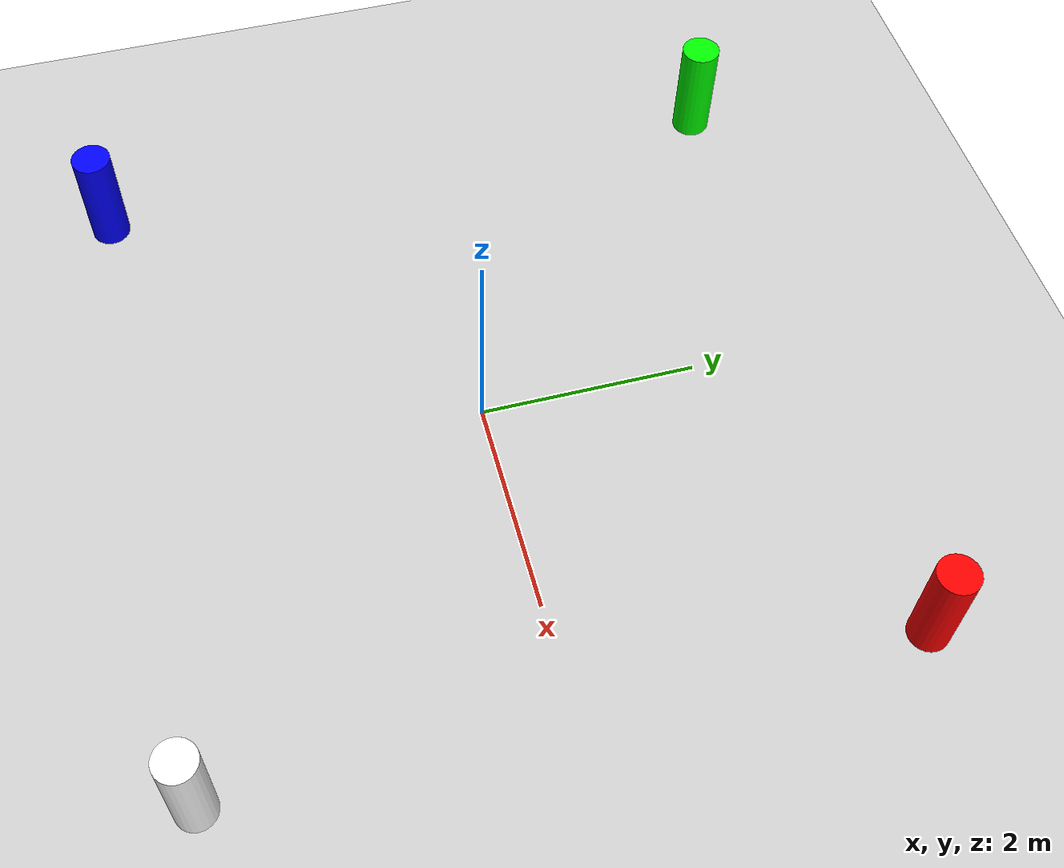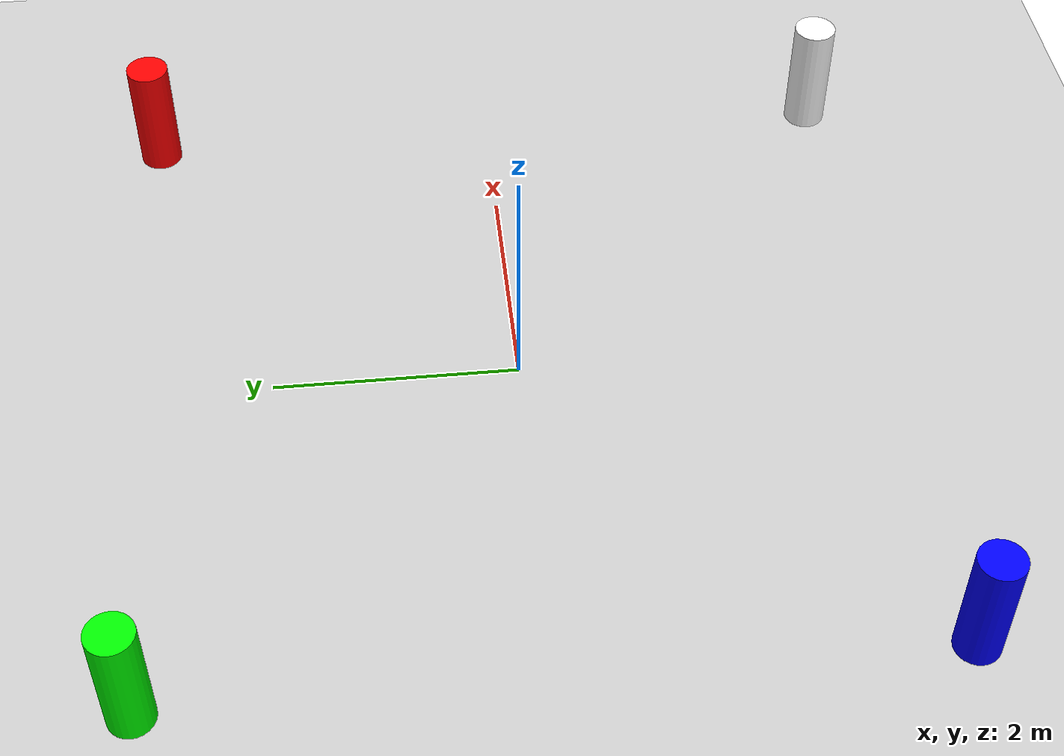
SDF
<?xml version="1.0"?>
<sdf version="1.6">
  <world name="color_pillar_world">

    <include>
      <uri>model://ground_plane</uri>
    </include>

    <include>
      <uri>model://sun</uri>
    </include>

    <!-- Red pillar: x=3, y=3 -->
    <model name="red_pillar">
      <static>true</static>
      <pose>3 3 0.5 0 0 0</pose>
      <link name="body">
        <collision name="collision">
          <geometry>
            <cylinder>
              <radius>0.18</radius>
              <length>1.0</length>
            </cylinder>
          </geometry>
        </collision>
        <visual name="visual">
          <geometry>
            <cylinder>
              <radius>0.18</radius>
              <length>1.0</length>
            </cylinder>
          </geometry>
          <material>
            <ambient>1 0 0 1</ambient>
            <diffuse>1 0 0 1</diffuse>
          </material>
        </visual>
      </link>
    </model>

    <!-- Green pillar: x=-3, y=3 -->
    <model name="green_pillar">
      <static>true</static>
      <pose>-3 3 0.5 0 0 0</pose>
      <link name="body">
        <collision name="collision">
          <geometry>
            <cylinder>
              <radius>0.18</radius>
              <length>1.0</length>
            </cylinder>
          </geometry>
        </collision>
        <visual name="visual">
          <geometry>
            <cylinder>
              <radius>0.18</radius>
              <length>1.0</length>
            </cylinder>
          </geometry>
          <material>
            <ambient>0 1 0 1</ambient>
            <diffuse>0 1 0 1</diffuse>
          </material>
        </visual>
      </link>
    </model>

    <!-- Blue pillar: x=-3, y=-3 -->
    <model name="blue_pillar">
      <static>true</static>
      <pose>-3 -3 0.5 0 0 0</pose>
      <link name="body">
        <collision name="collision">
          <geometry>
            <cylinder>
              <radius>0.18</radius>
              <length>1.0</length>
            </cylinder>
          </geometry>
        </collision>
        <visual name="visual">
          <geometry>
            <cylinder>
              <radius>0.18</radius>
              <length>1.0</length>
            </cylinder>
          </geometry>
          <material>
            <ambient>0 0 1 1</ambient>
            <diffuse>0 0 1 1</diffuse>
          </material>
        </visual>
      </link>
    </model>

    <!-- White pillar: x=3, y=-3 -->
    <model name="white_pillar">
      <static>true</static>
      <pose>3 -3 0.5 0 0 0</pose>
      <link name="body">
        <collision name="collision">
          <geometry>
            <cylinder>
              <radius>0.18</radius>
              <length>1.0</length>
            </cylinder>
          </geometry>
        </collision>
        <visual name="visual">
          <geometry>
            <cylinder>
              <radius>0.18</radius>
              <length>1.0</length>
            </cylinder>
          </geometry>
          <material>
            <ambient>1 1 1 1</ambient>
            <diffuse>1 1 1 1</diffuse>
          </material>
        </visual>
      </link>
    </model>

  </world>
</sdf>
